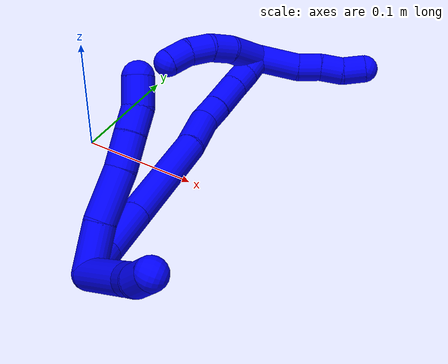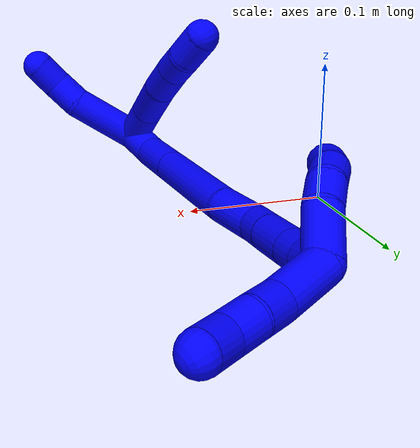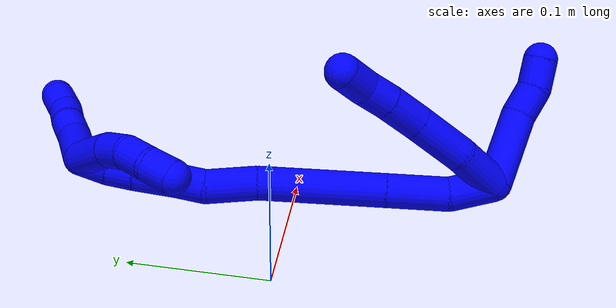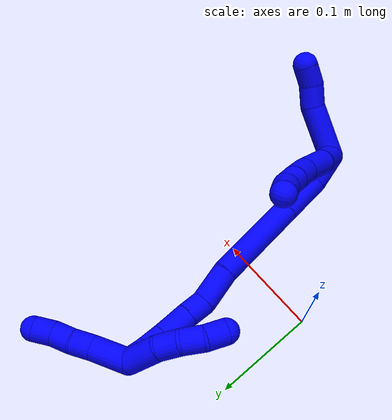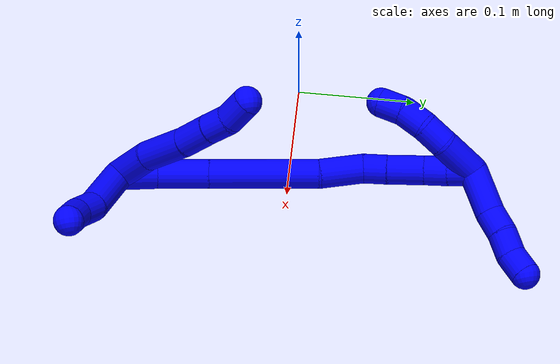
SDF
<sdf version="1.7">
 <world name="default">
  <model name="1">
   <static>0</static>
   <link name="1">
    <collision name="collision-cylinder-e_1_2_8">
     <pose>0.018784 0.001054 0.00335 -0.304815 1.38598 -0.25372</pose>
     <geometry><cylinder><radius>0.0125</radius><length>0.038219</length></cylinder></geometry>
     <surface>
      <friction><ode><mu>1.16</mu><mu2>1.16</mu2><slip1>0</slip1><slip2>0</slip2></ode></friction>
      <contact><ode><kp>1e+06</kp><kd>1</kd><max_vel>0</max_vel><min_depth>0.001</min_depth></ode></contact>
     </surface>
    </collision>
    <visual name="visual-cylinder-e_1_2_8">
     <pose>0.018784 0.001054 0.00335 -0.304815 1.38598 -0.25372</pose>
     <geometry><cylinder><radius>0.0125</radius><length>0.038219</length></cylinder></geometry>
     <material><ambient>0 0 1 1</ambient></material>
    </visual>
    <collision name="collision-cylinder-e_2_8_9">
     <pose>0.057697 0.005183 0.00721 -1.40625 1.41713 -1.25654</pose>
     <geometry><cylinder><radius>0.0125</radius><length>0.040739</length></cylinder></geometry>
     <surface>
      <friction><ode><mu>1.16</mu><mu2>1.16</mu2><slip1>0</slip1><slip2>0</slip2></ode></friction>
      <contact><ode><kp>1e+06</kp><kd>1</kd><max_vel>0</max_vel><min_depth>0.001</min_depth></ode></contact>
     </surface>
    </collision>
    <visual name="visual-cylinder-e_2_8_9">
     <pose>0.057697 0.005183 0.00721 -1.40625 1.41713 -1.25654</pose>
     <geometry><cylinder><radius>0.0125</radius><length>0.040739</length></cylinder></geometry>
     <material><ambient>0 0 1 1</ambient></material>
    </visual>
    <collision name="collision-cylinder-e_3_9_10">
     <pose>0.091299 0.010398 0.009544 -0.864763 1.36512 -0.717823</pose>
     <geometry><cylinder><radius>0.0125</radius><length>0.027525</length></cylinder></geometry>
     <surface>
      <friction><ode><mu>1.16</mu><mu2>1.16</mu2><slip1>0</slip1><slip2>0</slip2></ode></friction>
      <contact><ode><kp>1e+06</kp><kd>1</kd><max_vel>0</max_vel><min_depth>0.001</min_depth></ode></contact>
     </surface>
    </collision>
    <visual name="visual-cylinder-e_3_9_10">
     <pose>0.091299 0.010398 0.009544 -0.864763 1.36512 -0.717823</pose>
     <geometry><cylinder><radius>0.0125</radius><length>0.027525</length></cylinder></geometry>
     <material><ambient>0 0 1 1</ambient></material>
    </visual>
    <collision name="collision-cylinder-e_4_10_11">
     <pose>0.114665 0.014747 0.012607 -1.06004 1.32007 -0.853655</pose>
     <geometry><cylinder><radius>0.0125</radius><length>0.020427</length></cylinder></geometry>
     <surface>
      <friction><ode><mu>1.16</mu><mu2>1.16</mu2><slip1>0</slip1><slip2>0</slip2></ode></friction>
      <contact><ode><kp>1e+06</kp><kd>1</kd><max_vel>0</max_vel><min_depth>0.001</min_depth></ode></contact>
     </surface>
    </collision>
    <visual name="visual-cylinder-e_4_10_11">
     <pose>0.114665 0.014747 0.012607 -1.06004 1.32007 -0.853655</pose>
     <geometry><cylinder><radius>0.0125</radius><length>0.020427</length></cylinder></geometry>
     <material><ambient>0 0 1 1</ambient></material>
    </visual>
    <collision name="collision-cylinder-e_5_11_6">
     <pose>0.135173 0.018018 0.018263 -0.235523 1.16636 -0.155787</pose>
     <geometry><cylinder><radius>0.0125</radius><length>0.023091</length></cylinder></geometry>
     <surface>
      <friction><ode><mu>1.16</mu><mu2>1.16</mu2><slip1>0</slip1><slip2>0</slip2></ode></friction>
      <contact><ode><kp>1e+06</kp><kd>1</kd><max_vel>0</max_vel><min_depth>0.001</min_depth></ode></contact>
     </surface>
    </collision>
    <visual name="visual-cylinder-e_5_11_6">
     <pose>0.135173 0.018018 0.018263 -0.235523 1.16636 -0.155787</pose>
     <geometry><cylinder><radius>0.0125</radius><length>0.023091</length></cylinder></geometry>
     <material><ambient>0 0 1 1</ambient></material>
    </visual>
    <collision name="collision-cylinder-e_1_2_12">
     <pose>0.006852 -0.022259 -0.015018 2.16435 0.249844 0.463924</pose>
     <geometry><cylinder><radius>0.0125</radius><length>0.055424</length></cylinder></geometry>
     <surface>
      <friction><ode><mu>1.16</mu><mu2>1.16</mu2><slip1>0</slip1><slip2>0</slip2></ode></friction>
      <contact><ode><kp>1e+06</kp><kd>1</kd><max_vel>0</max_vel><min_depth>0.001</min_depth></ode></contact>
     </surface>
    </collision>
    <visual name="visual-cylinder-e_1_2_12">
     <pose>0.006852 -0.022259 -0.015018 2.16435 0.249844 0.463924</pose>
     <geometry><cylinder><radius>0.0125</radius><length>0.055424</length></cylinder></geometry>
     <material><ambient>0 0 1 1</ambient></material>
    </visual>
    <collision name="collision-cylinder-e_2_12_13">
     <pose>0.016017 -0.055205 -0.033367 1.87289 0.203779 0.276143</pose>
     <geometry><cylinder><radius>0.0125</radius><length>0.02286</length></cylinder></geometry>
     <surface>
      <friction><ode><mu>1.16</mu><mu2>1.16</mu2><slip1>0</slip1><slip2>0</slip2></ode></friction>
      <contact><ode><kp>1e+06</kp><kd>1</kd><max_vel>0</max_vel><min_depth>0.001</min_depth></ode></contact>
     </surface>
    </collision>
    <visual name="visual-cylinder-e_2_12_13">
     <pose>0.016017 -0.055205 -0.033367 1.87289 0.203779 0.276143</pose>
     <geometry><cylinder><radius>0.0125</radius><length>0.02286</length></cylinder></geometry>
     <material><ambient>0 0 1 1</ambient></material>
    </visual>
    <collision name="collision-cylinder-e_3_13_5">
     <pose>0.023439 -0.074594 -0.040705 2.0023 0.489843 0.744135</pose>
     <geometry><cylinder><radius>0.0125</radius><length>0.021715</length></cylinder></geometry>
     <surface>
      <friction><ode><mu>1.16</mu><mu2>1.16</mu2><slip1>0</slip1><slip2>0</slip2></ode></friction>
      <contact><ode><kp>1e+06</kp><kd>1</kd><max_vel>0</max_vel><min_depth>0.001</min_depth></ode></contact>
     </surface>
    </collision>
    <visual name="visual-cylinder-e_3_13_5">
     <pose>0.023439 -0.074594 -0.040705 2.0023 0.489843 0.744135</pose>
     <geometry><cylinder><radius>0.0125</radius><length>0.021715</length></cylinder></geometry>
     <material><ambient>0 0 1 1</ambient></material>
    </visual>
    <collision name="collision-cylinder-e_1_2_14">
     <pose>0.007965 0.014152 -0.001507 -1.67685 0.510206 -0.564553</pose>
     <geometry><cylinder><radius>0.0125</radius><length>0.032618</length></cylinder></geometry>
     <surface>
      <friction><ode><mu>1.16</mu><mu2>1.16</mu2><slip1>0</slip1><slip2>0</slip2></ode></friction>
      <contact><ode><kp>1e+06</kp><kd>1</kd><max_vel>0</max_vel><min_depth>0.001</min_depth></ode></contact>
     </surface>
    </collision>
    <visual name="visual-cylinder-e_1_2_14">
     <pose>0.007965 0.014152 -0.001507 -1.67685 0.510206 -0.564553</pose>
     <geometry><cylinder><radius>0.0125</radius><length>0.032618</length></cylinder></geometry>
     <material><ambient>0 0 1 1</ambient></material>
    </visual>
    <collision name="collision-cylinder-e_2_14_15">
     <pose>0.031357 0.043805 -0.006956 -1.81985 0.76737 -0.957804</pose>
     <geometry><cylinder><radius>0.0125</radius><length>0.044445</length></cylinder></geometry>
     <surface>
      <friction><ode><mu>1.16</mu><mu2>1.16</mu2><slip1>0</slip1><slip2>0</slip2></ode></friction>
      <contact><ode><kp>1e+06</kp><kd>1</kd><max_vel>0</max_vel><min_depth>0.001</min_depth></ode></contact>
     </surface>
    </collision>
    <visual name="visual-cylinder-e_2_14_15">
     <pose>0.031357 0.043805 -0.006956 -1.81985 0.76737 -0.957804</pose>
     <geometry><cylinder><radius>0.0125</radius><length>0.044445</length></cylinder></geometry>
     <material><ambient>0 0 1 1</ambient></material>
    </visual>
    <collision name="collision-cylinder-e_3_15_16">
     <pose>0.07883 0.091543 -0.019095 -1.81978 0.766755 -0.957024</pose>
     <geometry><cylinder><radius>0.0125</radius><length>0.092376</length></cylinder></geometry>
     <surface>
      <friction><ode><mu>1.16</mu><mu2>1.16</mu2><slip1>0</slip1><slip2>0</slip2></ode></friction>
      <contact><ode><kp>1e+06</kp><kd>1</kd><max_vel>0</max_vel><min_depth>0.001</min_depth></ode></contact>
     </surface>
    </collision>
    <visual name="visual-cylinder-e_3_15_16">
     <pose>0.07883 0.091543 -0.019095 -1.81978 0.766755 -0.957024</pose>
     <geometry><cylinder><radius>0.0125</radius><length>0.092376</length></cylinder></geometry>
     <material><ambient>0 0 1 1</ambient></material>
    </visual>
    <collision name="collision-cylinder-e_4_16_17">
     <pose>0.122965 0.138146 -0.02806 -1.62421 0.698877 -0.733966</pose>
     <geometry><cylinder><radius>0.0125</radius><length>0.037583</length></cylinder></geometry>
     <surface>
      <friction><ode><mu>1.16</mu><mu2>1.16</mu2><slip1>0</slip1><slip2>0</slip2></ode></friction>
      <contact><ode><kp>1e+06</kp><kd>1</kd><max_vel>0</max_vel><min_depth>0.001</min_depth></ode></contact>
     </surface>
    </collision>
    <visual name="visual-cylinder-e_4_16_17">
     <pose>0.122965 0.138146 -0.02806 -1.62421 0.698877 -0.733966</pose>
     <geometry><cylinder><radius>0.0125</radius><length>0.037583</length></cylinder></geometry>
     <material><ambient>0 0 1 1</ambient></material>
    </visual>
    <collision name="collision-cylinder-e_5_17_18">
     <pose>0.142987 0.158597 -0.03139 -1.96938 0.876648 -1.22948</pose>
     <geometry><cylinder><radius>0.0125</radius><length>0.020641</length></cylinder></geometry>
     <surface>
      <friction><ode><mu>1.16</mu><mu2>1.16</mu2><slip1>0</slip1><slip2>0</slip2></ode></friction>
      <contact><ode><kp>1e+06</kp><kd>1</kd><max_vel>0</max_vel><min_depth>0.001</min_depth></ode></contact>
     </surface>
    </collision>
    <visual name="visual-cylinder-e_5_17_18">
     <pose>0.142987 0.158597 -0.03139 -1.96938 0.876648 -1.22948</pose>
     <geometry><cylinder><radius>0.0125</radius><length>0.020641</length></cylinder></geometry>
     <material><ambient>0 0 1 1</ambient></material>
    </visual>
    <collision name="collision-cylinder-e_6_18_19">
     <pose>0.162627 0.174307 -0.03724 -1.8999 0.855459 -1.13497</pose>
     <geometry><cylinder><radius>0.0125</radius><length>0.031017</length></cylinder></geometry>
     <surface>
      <friction><ode><mu>1.16</mu><mu2>1.16</mu2><slip1>0</slip1><slip2>0</slip2></ode></friction>
      <contact><ode><kp>1e+06</kp><kd>1</kd><max_vel>0</max_vel><min_depth>0.001</min_depth></ode></contact>
     </surface>
    </collision>
    <visual name="visual-cylinder-e_6_18_19">
     <pose>0.162627 0.174307 -0.03724 -1.8999 0.855459 -1.13497</pose>
     <geometry><cylinder><radius>0.0125</radius><length>0.031017</length></cylinder></geometry>
     <material><ambient>0 0 1 1</ambient></material>
    </visual>
    <collision name="collision-cylinder-e_7_19_20">
     <pose>0.182097 0.189895 -0.042923 -1.95278 0.879361 -1.21592</pose>
     <geometry><cylinder><radius>0.0125</radius><length>0.020154</length></cylinder></geometry>
     <surface>
      <friction><ode><mu>1.16</mu><mu2>1.16</mu2><slip1>0</slip1><slip2>0</slip2></ode></friction>
      <contact><ode><kp>1e+06</kp><kd>1</kd><max_vel>0</max_vel><min_depth>0.001</min_depth></ode></contact>
     </surface>
    </collision>
    <visual name="visual-cylinder-e_7_19_20">
     <pose>0.182097 0.189895 -0.042923 -1.95278 0.879361 -1.21592</pose>
     <geometry><cylinder><radius>0.0125</radius><length>0.020154</length></cylinder></geometry>
     <material><ambient>0 0 1 1</ambient></material>
    </visual>
    <collision name="collision-cylinder-e_8_20_1">
     <pose>0.198997 0.200722 -0.047516 -1.99517 1.04212 -1.4536</pose>
     <geometry><cylinder><radius>0.0125</radius><length>0.021165</length></cylinder></geometry>
     <surface>
      <friction><ode><mu>1.16</mu><mu2>1.16</mu2><slip1>0</slip1><slip2>0</slip2></ode></friction>
      <contact><ode><kp>1e+06</kp><kd>1</kd><max_vel>0</max_vel><min_depth>0.001</min_depth></ode></contact>
     </surface>
    </collision>
    <visual name="visual-cylinder-e_8_20_1">
     <pose>0.198997 0.200722 -0.047516 -1.99517 1.04212 -1.4536</pose>
     <geometry><cylinder><radius>0.0125</radius><length>0.021165</length></cylinder></geometry>
     <material><ambient>0 0 1 1</ambient></material>
    </visual>
    <collision name="collision-cylinder-e_1_1_21">
     <pose>0.20611 0.192626 -0.037651 0.821254 -0.113882 -0.049625</pose>
     <geometry><cylinder><radius>0.0125</radius><length>0.035643</length></cylinder></geometry>
     <surface>
      <friction><ode><mu>1.16</mu><mu2>1.16</mu2><slip1>0</slip1><slip2>0</slip2></ode></friction>
      <contact><ode><kp>1e+06</kp><kd>1</kd><max_vel>0</max_vel><min_depth>0.001</min_depth></ode></contact>
     </surface>
    </collision>
    <visual name="visual-cylinder-e_1_1_21">
     <pose>0.20611 0.192626 -0.037651 0.821254 -0.113882 -0.049625</pose>
     <geometry><cylinder><radius>0.0125</radius><length>0.035643</length></cylinder></geometry>
     <material><ambient>0 0 1 1</ambient></material>
    </visual>
    <collision name="collision-cylinder-e_2_21_22">
     <pose>0.200821 0.173399 -0.017133 0.637844 -0.30071 -0.099964</pose>
     <geometry><cylinder><radius>0.0125</radius><length>0.022035</length></cylinder></geometry>
     <surface>
      <friction><ode><mu>1.16</mu><mu2>1.16</mu2><slip1>0</slip1><slip2>0</slip2></ode></friction>
      <contact><ode><kp>1e+06</kp><kd>1</kd><max_vel>0</max_vel><min_depth>0.001</min_depth></ode></contact>
     </surface>
    </collision>
    <visual name="visual-cylinder-e_2_21_22">
     <pose>0.200821 0.173399 -0.017133 0.637844 -0.30071 -0.099964</pose>
     <geometry><cylinder><radius>0.0125</radius><length>0.022035</length></cylinder></geometry>
     <material><ambient>0 0 1 1</ambient></material>
    </visual>
    <collision name="collision-cylinder-e_3_22_23">
     <pose>0.191712 0.162877 -0.000663 0.488014 -0.572238 -0.146227</pose>
     <geometry><cylinder><radius>0.0125</radius><length>0.02159</length></cylinder></geometry>
     <surface>
      <friction><ode><mu>1.16</mu><mu2>1.16</mu2><slip1>0</slip1><slip2>0</slip2></ode></friction>
      <contact><ode><kp>1e+06</kp><kd>1</kd><max_vel>0</max_vel><min_depth>0.001</min_depth></ode></contact>
     </surface>
    </collision>
    <visual name="visual-cylinder-e_3_22_23">
     <pose>0.191712 0.162877 -0.000663 0.488014 -0.572238 -0.146227</pose>
     <geometry><cylinder><radius>0.0125</radius><length>0.02159</length></cylinder></geometry>
     <material><ambient>0 0 1 1</ambient></material>
    </visual>
    <collision name="collision-cylinder-e_4_23_4">
     <pose>0.178269 0.15448 0.01306 0.627764 -0.822638 -0.281322</pose>
     <geometry><cylinder><radius>0.0125</radius><length>0.020732</length></cylinder></geometry>
     <surface>
      <friction><ode><mu>1.16</mu><mu2>1.16</mu2><slip1>0</slip1><slip2>0</slip2></ode></friction>
      <contact><ode><kp>1e+06</kp><kd>1</kd><max_vel>0</max_vel><min_depth>0.001</min_depth></ode></contact>
     </surface>
    </collision>
    <visual name="visual-cylinder-e_4_23_4">
     <pose>0.178269 0.15448 0.01306 0.627764 -0.822638 -0.281322</pose>
     <geometry><cylinder><radius>0.0125</radius><length>0.020732</length></cylinder></geometry>
     <material><ambient>0 0 1 1</ambient></material>
    </visual>
    <collision name="collision-cylinder-e_1_1_24">
     <pose>0.211345 0.207137 -0.068674 -3.06002 0.16717 -2.23505</pose>
     <geometry><cylinder><radius>0.0125</radius><length>0.038586</length></cylinder></geometry>
     <surface>
      <friction><ode><mu>1.16</mu><mu2>1.16</mu2><slip1>0</slip1><slip2>0</slip2></ode></friction>
      <contact><ode><kp>1e+06</kp><kd>1</kd><max_vel>0</max_vel><min_depth>0.001</min_depth></ode></contact>
     </surface>
    </collision>
    <visual name="visual-cylinder-e_1_1_24">
     <pose>0.211345 0.207137 -0.068674 -3.06002 0.16717 -2.23505</pose>
     <geometry><cylinder><radius>0.0125</radius><length>0.038586</length></cylinder></geometry>
     <material><ambient>0 0 1 1</ambient></material>
    </visual>
    <collision name="collision-cylinder-e_2_24_25">
     <pose>0.218575 0.208907 -0.097241 -3.11868 0.396196 -3.02758</pose>
     <geometry><cylinder><radius>0.0125</radius><length>0.020831</length></cylinder></geometry>
     <surface>
      <friction><ode><mu>1.16</mu><mu2>1.16</mu2><slip1>0</slip1><slip2>0</slip2></ode></friction>
      <contact><ode><kp>1e+06</kp><kd>1</kd><max_vel>0</max_vel><min_depth>0.001</min_depth></ode></contact>
     </surface>
    </collision>
    <visual name="visual-cylinder-e_2_24_25">
     <pose>0.218575 0.208907 -0.097241 -3.11868 0.396196 -3.02758</pose>
     <geometry><cylinder><radius>0.0125</radius><length>0.020831</length></cylinder></geometry>
     <material><ambient>0 0 1 1</ambient></material>
    </visual>
    <collision name="collision-cylinder-e_3_25_26">
     <pose>0.224679 0.209257 -0.116786 -3.1285 0.206753 -3.01555</pose>
     <geometry><cylinder><radius>0.0125</radius><length>0.020312</length></cylinder></geometry>
     <surface>
      <friction><ode><mu>1.16</mu><mu2>1.16</mu2><slip1>0</slip1><slip2>0</slip2></ode></friction>
      <contact><ode><kp>1e+06</kp><kd>1</kd><max_vel>0</max_vel><min_depth>0.001</min_depth></ode></contact>
     </surface>
    </collision>
    <visual name="visual-cylinder-e_3_25_26">
     <pose>0.224679 0.209257 -0.116786 -3.1285 0.206753 -3.01555</pose>
     <geometry><cylinder><radius>0.0125</radius><length>0.020312</length></cylinder></geometry>
     <material><ambient>0 0 1 1</ambient></material>
    </visual>
    <collision name="collision-cylinder-e_4_26_3">
     <pose>0.231597 0.209773 -0.135626 -3.09824 0.497074 -2.97116</pose>
     <geometry><cylinder><radius>0.0125</radius><length>0.020272</length></cylinder></geometry>
     <surface>
      <friction><ode><mu>1.16</mu><mu2>1.16</mu2><slip1>0</slip1><slip2>0</slip2></ode></friction>
      <contact><ode><kp>1e+06</kp><kd>1</kd><max_vel>0</max_vel><min_depth>0.001</min_depth></ode></contact>
     </surface>
    </collision>
    <visual name="visual-cylinder-e_4_26_3">
     <pose>0.231597 0.209773 -0.135626 -3.09824 0.497074 -2.97116</pose>
     <geometry><cylinder><radius>0.0125</radius><length>0.020272</length></cylinder></geometry>
     <material><ambient>0 0 1 1</ambient></material>
    </visual>
    <collision name="collision-sphere-3">
     <pose>0.23643 0.210159 -0.144526 0 -0 0</pose>
     <geometry><sphere><radius>0.0125</radius></sphere></geometry>
     <surface>
      <friction><ode><mu>1.16</mu><mu2>1.16</mu2><slip1>0</slip1><slip2>0</slip2></ode></friction>
      <contact><ode><kp>1e+06</kp><kd>1</kd><max_vel>0</max_vel><min_depth>0.001</min_depth></ode></contact>
     </surface>
    </collision>
    <visual name="visual-sphere-3">
     <pose>0.23643 0.210159 -0.144526 0 -0 0</pose>
     <geometry><sphere><radius>0.0125</radius></sphere></geometry>
     <material><ambient>0 0 1 1</ambient></material>
    </visual>
    <collision name="collision-sphere-26">
     <pose>0.226764 0.209387 -0.126725 0 -0 0</pose>
     <geometry><sphere><radius>0.0125</radius></sphere></geometry>
     <surface>
      <friction><ode><mu>1.16</mu><mu2>1.16</mu2><slip1>0</slip1><slip2>0</slip2></ode></friction>
      <contact><ode><kp>1e+06</kp><kd>1</kd><max_vel>0</max_vel><min_depth>0.001</min_depth></ode></contact>
     </surface>
    </collision>
    <visual name="visual-sphere-26">
     <pose>0.226764 0.209387 -0.126725 0 -0 0</pose>
     <geometry><sphere><radius>0.0125</radius></sphere></geometry>
     <material><ambient>0 0 1 1</ambient></material>
    </visual>
    <collision name="collision-sphere-25">
     <pose>0.222594 0.209127 -0.106848 0 -0 0</pose>
     <geometry><sphere><radius>0.0125</radius></sphere></geometry>
     <surface>
      <friction><ode><mu>1.16</mu><mu2>1.16</mu2><slip1>0</slip1><slip2>0</slip2></ode></friction>
      <contact><ode><kp>1e+06</kp><kd>1</kd><max_vel>0</max_vel><min_depth>0.001</min_depth></ode></contact>
     </surface>
    </collision>
    <visual name="visual-sphere-25">
     <pose>0.222594 0.209127 -0.106848 0 -0 0</pose>
     <geometry><sphere><radius>0.0125</radius></sphere></geometry>
     <material><ambient>0 0 1 1</ambient></material>
    </visual>
    <collision name="collision-sphere-24">
     <pose>0.214555 0.208687 -0.087635 0 -0 0</pose>
     <geometry><sphere><radius>0.0125</radius></sphere></geometry>
     <surface>
      <friction><ode><mu>1.16</mu><mu2>1.16</mu2><slip1>0</slip1><slip2>0</slip2></ode></friction>
      <contact><ode><kp>1e+06</kp><kd>1</kd><max_vel>0</max_vel><min_depth>0.001</min_depth></ode></contact>
     </surface>
    </collision>
    <visual name="visual-sphere-24">
     <pose>0.214555 0.208687 -0.087635 0 -0 0</pose>
     <geometry><sphere><radius>0.0125</radius></sphere></geometry>
     <material><ambient>0 0 1 1</ambient></material>
    </visual>
    <collision name="collision-sphere-4">
     <pose>0.170671 0.150339 0.018767 0 -0 0</pose>
     <geometry><sphere><radius>0.0125</radius></sphere></geometry>
     <surface>
      <friction><ode><mu>1.16</mu><mu2>1.16</mu2><slip1>0</slip1><slip2>0</slip2></ode></friction>
      <contact><ode><kp>1e+06</kp><kd>1</kd><max_vel>0</max_vel><min_depth>0.001</min_depth></ode></contact>
     </surface>
    </collision>
    <visual name="visual-sphere-4">
     <pose>0.170671 0.150339 0.018767 0 -0 0</pose>
     <geometry><sphere><radius>0.0125</radius></sphere></geometry>
     <material><ambient>0 0 1 1</ambient></material>
    </visual>
    <collision name="collision-sphere-23">
     <pose>0.185866 0.158622 0.007353 0 -0 0</pose>
     <geometry><sphere><radius>0.0125</radius></sphere></geometry>
     <surface>
      <friction><ode><mu>1.16</mu><mu2>1.16</mu2><slip1>0</slip1><slip2>0</slip2></ode></friction>
      <contact><ode><kp>1e+06</kp><kd>1</kd><max_vel>0</max_vel><min_depth>0.001</min_depth></ode></contact>
     </surface>
    </collision>
    <visual name="visual-sphere-23">
     <pose>0.185866 0.158622 0.007353 0 -0 0</pose>
     <geometry><sphere><radius>0.0125</radius></sphere></geometry>
     <material><ambient>0 0 1 1</ambient></material>
    </visual>
    <collision name="collision-sphere-22">
     <pose>0.197558 0.167133 -0.008679 0 -0 0</pose>
     <geometry><sphere><radius>0.0125</radius></sphere></geometry>
     <surface>
      <friction><ode><mu>1.16</mu><mu2>1.16</mu2><slip1>0</slip1><slip2>0</slip2></ode></friction>
      <contact><ode><kp>1e+06</kp><kd>1</kd><max_vel>0</max_vel><min_depth>0.001</min_depth></ode></contact>
     </surface>
    </collision>
    <visual name="visual-sphere-22">
     <pose>0.197558 0.167133 -0.008679 0 -0 0</pose>
     <geometry><sphere><radius>0.0125</radius></sphere></geometry>
     <material><ambient>0 0 1 1</ambient></material>
    </visual>
    <collision name="collision-sphere-21">
     <pose>0.204085 0.179665 -0.025587 0 -0 0</pose>
     <geometry><sphere><radius>0.0125</radius></sphere></geometry>
     <surface>
      <friction><ode><mu>1.16</mu><mu2>1.16</mu2><slip1>0</slip1><slip2>0</slip2></ode></friction>
      <contact><ode><kp>1e+06</kp><kd>1</kd><max_vel>0</max_vel><min_depth>0.001</min_depth></ode></contact>
     </surface>
    </collision>
    <visual name="visual-sphere-21">
     <pose>0.204085 0.179665 -0.025587 0 -0 0</pose>
     <geometry><sphere><radius>0.0125</radius></sphere></geometry>
     <material><ambient>0 0 1 1</ambient></material>
    </visual>
    <collision name="collision-sphere-1">
     <pose>0.208135 0.205587 -0.049714 0 -0 0</pose>
     <geometry><sphere><radius>0.0125</radius></sphere></geometry>
     <surface>
      <friction><ode><mu>1.16</mu><mu2>1.16</mu2><slip1>0</slip1><slip2>0</slip2></ode></friction>
      <contact><ode><kp>1e+06</kp><kd>1</kd><max_vel>0</max_vel><min_depth>0.001</min_depth></ode></contact>
     </surface>
    </collision>
    <visual name="visual-sphere-1">
     <pose>0.208135 0.205587 -0.049714 0 -0 0</pose>
     <geometry><sphere><radius>0.0125</radius></sphere></geometry>
     <material><ambient>0 0 1 1</ambient></material>
    </visual>
    <collision name="collision-sphere-6">
     <pose>0.145787 0.019078 0.022681 0 -0 0</pose>
     <geometry><sphere><radius>0.0125</radius></sphere></geometry>
     <surface>
      <friction><ode><mu>1.16</mu><mu2>1.16</mu2><slip1>0</slip1><slip2>0</slip2></ode></friction>
      <contact><ode><kp>1e+06</kp><kd>1</kd><max_vel>0</max_vel><min_depth>0.001</min_depth></ode></contact>
     </surface>
    </collision>
    <visual name="visual-sphere-6">
     <pose>0.145787 0.019078 0.022681 0 -0 0</pose>
     <geometry><sphere><radius>0.0125</radius></sphere></geometry>
     <material><ambient>0 0 1 1</ambient></material>
    </visual>
    <collision name="collision-sphere-11">
     <pose>0.124559 0.016958 0.013845 0 -0 0</pose>
     <geometry><sphere><radius>0.0125</radius></sphere></geometry>
     <surface>
      <friction><ode><mu>1.16</mu><mu2>1.16</mu2><slip1>0</slip1><slip2>0</slip2></ode></friction>
      <contact><ode><kp>1e+06</kp><kd>1</kd><max_vel>0</max_vel><min_depth>0.001</min_depth></ode></contact>
     </surface>
    </collision>
    <visual name="visual-sphere-11">
     <pose>0.124559 0.016958 0.013845 0 -0 0</pose>
     <geometry><sphere><radius>0.0125</radius></sphere></geometry>
     <material><ambient>0 0 1 1</ambient></material>
    </visual>
    <collision name="collision-sphere-10">
     <pose>0.104771 0.012536 0.011368 0 -0 0</pose>
     <geometry><sphere><radius>0.0125</radius></sphere></geometry>
     <surface>
      <friction><ode><mu>1.16</mu><mu2>1.16</mu2><slip1>0</slip1><slip2>0</slip2></ode></friction>
      <contact><ode><kp>1e+06</kp><kd>1</kd><max_vel>0</max_vel><min_depth>0.001</min_depth></ode></contact>
     </surface>
    </collision>
    <visual name="visual-sphere-10">
     <pose>0.104771 0.012536 0.011368 0 -0 0</pose>
     <geometry><sphere><radius>0.0125</radius></sphere></geometry>
     <material><ambient>0 0 1 1</ambient></material>
    </visual>
    <collision name="collision-sphere-9">
     <pose>0.077826 0.008259 0.007721 0 -0 0</pose>
     <geometry><sphere><radius>0.0125</radius></sphere></geometry>
     <surface>
      <friction><ode><mu>1.16</mu><mu2>1.16</mu2><slip1>0</slip1><slip2>0</slip2></ode></friction>
      <contact><ode><kp>1e+06</kp><kd>1</kd><max_vel>0</max_vel><min_depth>0.001</min_depth></ode></contact>
     </surface>
    </collision>
    <visual name="visual-sphere-9">
     <pose>0.077826 0.008259 0.007721 0 -0 0</pose>
     <geometry><sphere><radius>0.0125</radius></sphere></geometry>
     <material><ambient>0 0 1 1</ambient></material>
    </visual>
    <collision name="collision-sphere-2">
     <geometry><sphere><radius>0.0125</radius></sphere></geometry>
     <surface>
      <friction><ode><mu>1.16</mu><mu2>1.16</mu2><slip1>0</slip1><slip2>0</slip2></ode></friction>
      <contact><ode><kp>1e+06</kp><kd>1</kd><max_vel>0</max_vel><min_depth>0.001</min_depth></ode></contact>
     </surface>
    </collision>
    <visual name="visual-sphere-2">
     <geometry><sphere><radius>0.0125</radius></sphere></geometry>
     <material><ambient>0 0 1 1</ambient></material>
    </visual>
    <collision name="collision-sphere-19">
     <pose>0.174334 0.183933 -0.040528 0 -0 0</pose>
     <geometry><sphere><radius>0.0125</radius></sphere></geometry>
     <surface>
      <friction><ode><mu>1.16</mu><mu2>1.16</mu2><slip1>0</slip1><slip2>0</slip2></ode></friction>
      <contact><ode><kp>1e+06</kp><kd>1</kd><max_vel>0</max_vel><min_depth>0.001</min_depth></ode></contact>
     </surface>
    </collision>
    <visual name="visual-sphere-19">
     <pose>0.174334 0.183933 -0.040528 0 -0 0</pose>
     <geometry><sphere><radius>0.0125</radius></sphere></geometry>
     <material><ambient>0 0 1 1</ambient></material>
    </visual>
    <collision name="collision-sphere-8">
     <pose>0.037568 0.002108 0.006699 0 -0 0</pose>
     <geometry><sphere><radius>0.0125</radius></sphere></geometry>
     <surface>
      <friction><ode><mu>1.16</mu><mu2>1.16</mu2><slip1>0</slip1><slip2>0</slip2></ode></friction>
      <contact><ode><kp>1e+06</kp><kd>1</kd><max_vel>0</max_vel><min_depth>0.001</min_depth></ode></contact>
     </surface>
    </collision>
    <visual name="visual-sphere-8">
     <pose>0.037568 0.002108 0.006699 0 -0 0</pose>
     <geometry><sphere><radius>0.0125</radius></sphere></geometry>
     <material><ambient>0 0 1 1</ambient></material>
    </visual>
    <collision name="collision-sphere-12">
     <pose>0.013704 -0.044518 -0.030037 0 -0 0</pose>
     <geometry><sphere><radius>0.0125</radius></sphere></geometry>
     <surface>
      <friction><ode><mu>1.16</mu><mu2>1.16</mu2><slip1>0</slip1><slip2>0</slip2></ode></friction>
      <contact><ode><kp>1e+06</kp><kd>1</kd><max_vel>0</max_vel><min_depth>0.001</min_depth></ode></contact>
     </surface>
    </collision>
    <visual name="visual-sphere-12">
     <pose>0.013704 -0.044518 -0.030037 0 -0 0</pose>
     <geometry><sphere><radius>0.0125</radius></sphere></geometry>
     <material><ambient>0 0 1 1</ambient></material>
    </visual>
    <collision name="collision-sphere-13">
     <pose>0.01833 -0.065892 -0.036698 0 -0 0</pose>
     <geometry><sphere><radius>0.0125</radius></sphere></geometry>
     <surface>
      <friction><ode><mu>1.16</mu><mu2>1.16</mu2><slip1>0</slip1><slip2>0</slip2></ode></friction>
      <contact><ode><kp>1e+06</kp><kd>1</kd><max_vel>0</max_vel><min_depth>0.001</min_depth></ode></contact>
     </surface>
    </collision>
    <visual name="visual-sphere-13">
     <pose>0.01833 -0.065892 -0.036698 0 -0 0</pose>
     <geometry><sphere><radius>0.0125</radius></sphere></geometry>
     <material><ambient>0 0 1 1</ambient></material>
    </visual>
    <collision name="collision-sphere-5">
     <pose>0.028547 -0.083297 -0.044712 0 -0 0</pose>
     <geometry><sphere><radius>0.0125</radius></sphere></geometry>
     <surface>
      <friction><ode><mu>1.16</mu><mu2>1.16</mu2><slip1>0</slip1><slip2>0</slip2></ode></friction>
      <contact><ode><kp>1e+06</kp><kd>1</kd><max_vel>0</max_vel><min_depth>0.001</min_depth></ode></contact>
     </surface>
    </collision>
    <visual name="visual-sphere-5">
     <pose>0.028547 -0.083297 -0.044712 0 -0 0</pose>
     <geometry><sphere><radius>0.0125</radius></sphere></geometry>
     <material><ambient>0 0 1 1</ambient></material>
    </visual>
    <collision name="collision-sphere-14">
     <pose>0.015929 0.028304 -0.003013 0 -0 0</pose>
     <geometry><sphere><radius>0.0125</radius></sphere></geometry>
     <surface>
      <friction><ode><mu>1.16</mu><mu2>1.16</mu2><slip1>0</slip1><slip2>0</slip2></ode></friction>
      <contact><ode><kp>1e+06</kp><kd>1</kd><max_vel>0</max_vel><min_depth>0.001</min_depth></ode></contact>
     </surface>
    </collision>
    <visual name="visual-sphere-14">
     <pose>0.015929 0.028304 -0.003013 0 -0 0</pose>
     <geometry><sphere><radius>0.0125</radius></sphere></geometry>
     <material><ambient>0 0 1 1</ambient></material>
    </visual>
    <collision name="collision-sphere-15">
     <pose>0.046785 0.059306 -0.010898 0 -0 0</pose>
     <geometry><sphere><radius>0.0125</radius></sphere></geometry>
     <surface>
      <friction><ode><mu>1.16</mu><mu2>1.16</mu2><slip1>0</slip1><slip2>0</slip2></ode></friction>
      <contact><ode><kp>1e+06</kp><kd>1</kd><max_vel>0</max_vel><min_depth>0.001</min_depth></ode></contact>
     </surface>
    </collision>
    <visual name="visual-sphere-15">
     <pose>0.046785 0.059306 -0.010898 0 -0 0</pose>
     <geometry><sphere><radius>0.0125</radius></sphere></geometry>
     <material><ambient>0 0 1 1</ambient></material>
    </visual>
    <collision name="collision-sphere-16">
     <pose>0.110875 0.12378 -0.027291 0 -0 0</pose>
     <geometry><sphere><radius>0.0125</radius></sphere></geometry>
     <surface>
      <friction><ode><mu>1.16</mu><mu2>1.16</mu2><slip1>0</slip1><slip2>0</slip2></ode></friction>
      <contact><ode><kp>1e+06</kp><kd>1</kd><max_vel>0</max_vel><min_depth>0.001</min_depth></ode></contact>
     </surface>
    </collision>
    <visual name="visual-sphere-16">
     <pose>0.110875 0.12378 -0.027291 0 -0 0</pose>
     <geometry><sphere><radius>0.0125</radius></sphere></geometry>
     <material><ambient>0 0 1 1</ambient></material>
    </visual>
    <collision name="collision-sphere-17">
     <pose>0.135055 0.152512 -0.028828 0 -0 0</pose>
     <geometry><sphere><radius>0.0125</radius></sphere></geometry>
     <surface>
      <friction><ode><mu>1.16</mu><mu2>1.16</mu2><slip1>0</slip1><slip2>0</slip2></ode></friction>
      <contact><ode><kp>1e+06</kp><kd>1</kd><max_vel>0</max_vel><min_depth>0.001</min_depth></ode></contact>
     </surface>
    </collision>
    <visual name="visual-sphere-17">
     <pose>0.135055 0.152512 -0.028828 0 -0 0</pose>
     <geometry><sphere><radius>0.0125</radius></sphere></geometry>
     <material><ambient>0 0 1 1</ambient></material>
    </visual>
    <collision name="collision-sphere-18">
     <pose>0.15092 0.164681 -0.033953 0 -0 0</pose>
     <geometry><sphere><radius>0.0125</radius></sphere></geometry>
     <surface>
      <friction><ode><mu>1.16</mu><mu2>1.16</mu2><slip1>0</slip1><slip2>0</slip2></ode></friction>
      <contact><ode><kp>1e+06</kp><kd>1</kd><max_vel>0</max_vel><min_depth>0.001</min_depth></ode></contact>
     </surface>
    </collision>
    <visual name="visual-sphere-18">
     <pose>0.15092 0.164681 -0.033953 0 -0 0</pose>
     <geometry><sphere><radius>0.0125</radius></sphere></geometry>
     <material><ambient>0 0 1 1</ambient></material>
    </visual>
    <collision name="collision-sphere-20">
     <pose>0.189859 0.195858 -0.045318 0 -0 0</pose>
     <geometry><sphere><radius>0.0125</radius></sphere></geometry>
     <surface>
      <friction><ode><mu>1.16</mu><mu2>1.16</mu2><slip1>0</slip1><slip2>0</slip2></ode></friction>
      <contact><ode><kp>1e+06</kp><kd>1</kd><max_vel>0</max_vel><min_depth>0.001</min_depth></ode></contact>
     </surface>
    </collision>
    <visual name="visual-sphere-20">
     <pose>0.189859 0.195858 -0.045318 0 -0 0</pose>
     <geometry><sphere><radius>0.0125</radius></sphere></geometry>
     <material><ambient>0 0 1 1</ambient></material>
    </visual>
    <inertial>
     <pose>0.111076 0.09094 -0.025635 0 -0 0</pose>
     <mass>0.75</mass>
     <inertia>
      <ixx>3.5e-05</ixx>
      <ixy>0</ixy>
      <ixz>0</ixz>
      <iyy>1.9e-05</iyy>
      <iyz>0</iyz>
      <izz>-0.000147</izz>
     </inertia>
    </inertial>
   </link>
   <pose>0.106036 -0.14099 0.018738 -1.13557 -0.803392 1.53599</pose>
  </model>
 </world>
</sdf>
